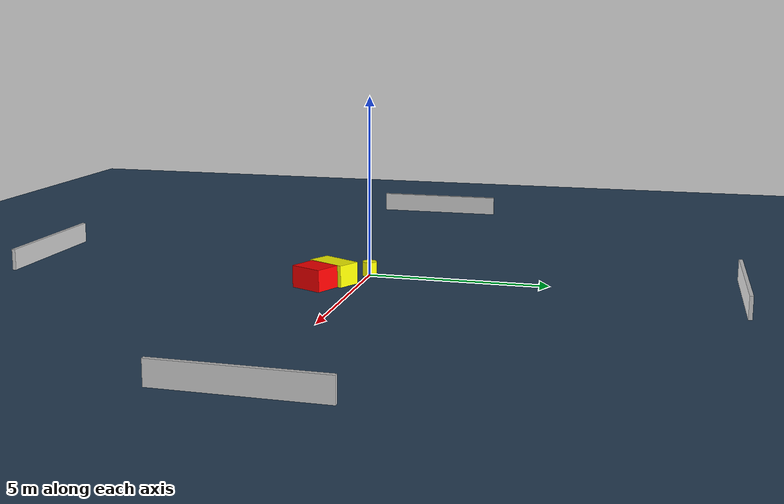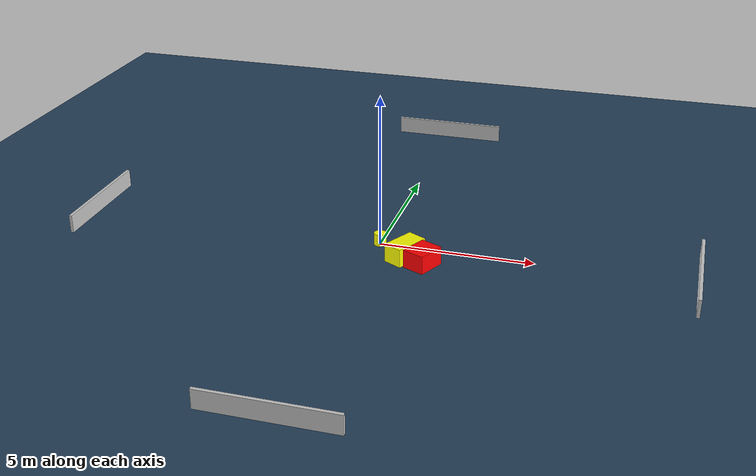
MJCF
<?xml version="1.0" ?>
<mujoco model="generated_environment">
  <option timestep="0.01" integrator="RK4" cone="elliptic"/>
  <default>
    <geom density="1"/>
  </default>
  <asset>
    <texture builtin="gradient" height="3072" name="skybox" rgb1="0.3 0.5 0.7" rgb2="0 0 0" type="skybox" width="512"/>
    <texture builtin="checker" height="300" name="groundplane" rgb1="0.2 0.3 0.4" rgb2="0.1 0.2 0.3" type="2d" width="300"/>
    <material name="groundplane" reflectance="0.2" texrepeat="5 5" texture="groundplane"/>
  </asset>
  <worldbody>
    <light dir="0 0 -1" directional="true" pos="0 0 1.5"/>
    <geom condim="3" friction="0.5 0.005 0.001" material="groundplane" name="floor" pos="0 0 0" size="0 0 0.05" type="plane"/>
    <body name="walls">
      <geom name="wall_1" condim="4" pos="-10.0 0.0 0.3" rgba="0.800000011920929 0.800000011920929 0.800000011920929 1.0" size="0.05 2.0 0.3" type="box"/>
      <geom name="wall_2" condim="4" pos="10.0 0.0 0.3" rgba="0.800000011920929 0.800000011920929 0.800000011920929 1.0" size="0.05 2.0 0.3" type="box"/>
      <geom name="wall_3" condim="4" pos="0.0 -10.0 0.3" rgba="0.800000011920929 0.800000011920929 0.800000011920929 1.0" size="2.0 0.05 0.3" type="box"/>
      <geom name="wall_4" condim="4" pos="0.0 10.0 0.3" rgba="0.800000011920929 0.800000011920929 0.800000011920929 1.0" size="2.0 0.05 0.3" type="box"/>
    </body>
    <body name="robot">
      <joint name="joint_x" type="slide" pos="0 0 0" axis="1 0 0"/>
      <joint name="joint_y" type="slide" pos="0 0 0" axis="0 1 0"/>
      <geom name="robot" type="cylinder" pos="0.0 0.0 0.2" size="0.2 0.2 0.0" mass="5.0" friction="1.0 0.005 0.0001" condim="4" rgba="1.0 1.0 0.0 1.0"/>
    </body>
    <body name="obstacle_1_movable">
      <geom name="obstacle_1_movable" condim="4" pos="1.0165212413620364 -0.7446616494680268 0.3" euler="0 0 151.659424491809" friction="0.0 0.005 0.001" rgba="1.0 1.0 0.0 1.0" size="0.3267008797551142 0.5796854283201771 0.3" type="box" mass="0.1"/>
      <joint type="free"/>
    </body>
    <body name="obstacle_2_static">
      <geom name="obstacle_2_static" condim="4" pos="1.6656745803451884 -1.0763612689277258 0.3" euler="0 0 245.02805290933964" friction="0.0 0.005 0.001" rgba="1.0 0.0 0.0 1.0" size="0.46855767163997325 0.37518150388352633 0.3" type="box"/>
    </body>
  </worldbody>
  <actuator>
    <motor name="actuator_x" joint="joint_x" gear="1" ctrlrange="-1 1"/>
    <motor name="actuator_y" joint="joint_y" gear="1" ctrlrange="-1 1"/>
  </actuator>
</mujoco>
